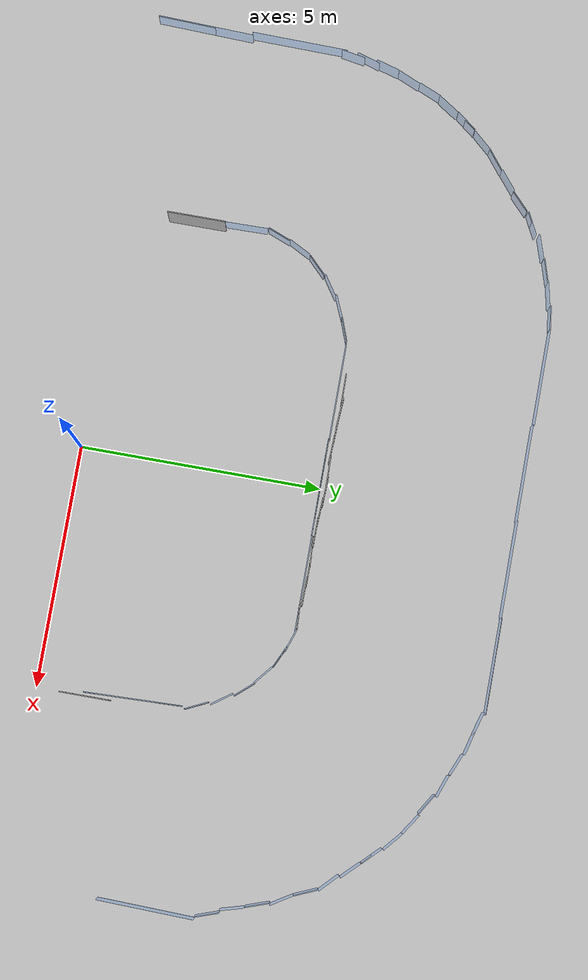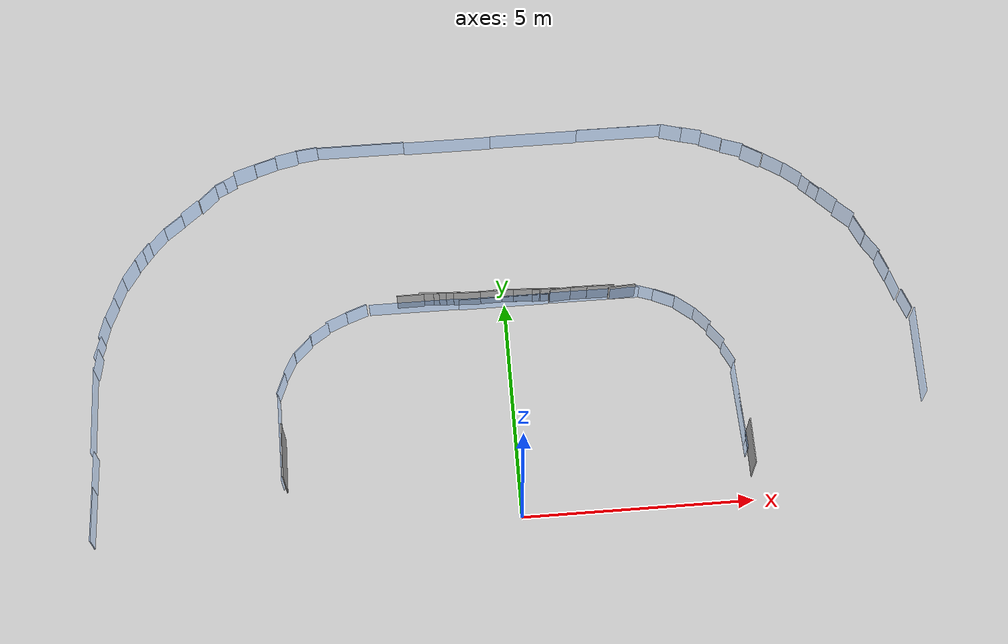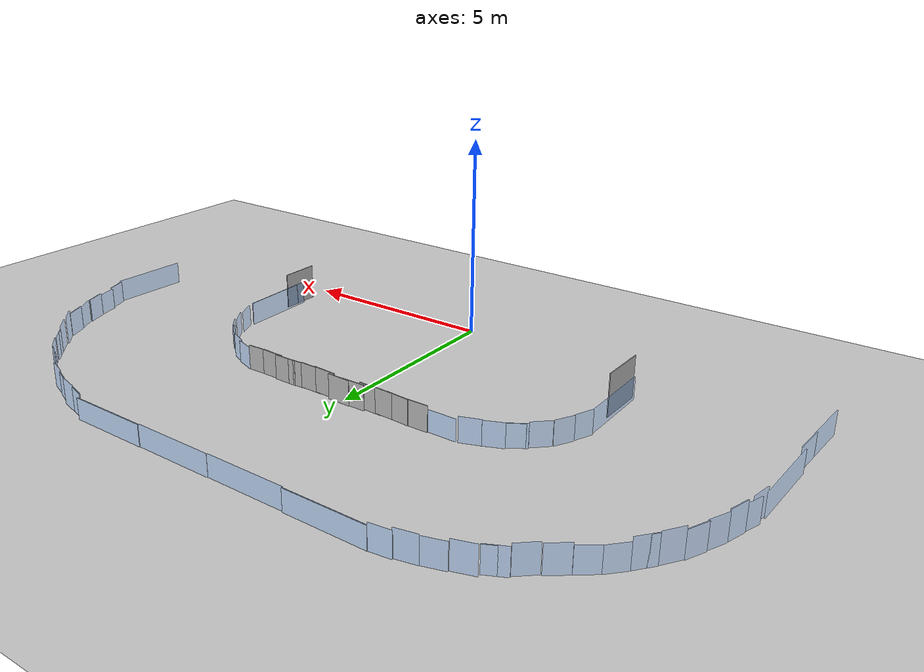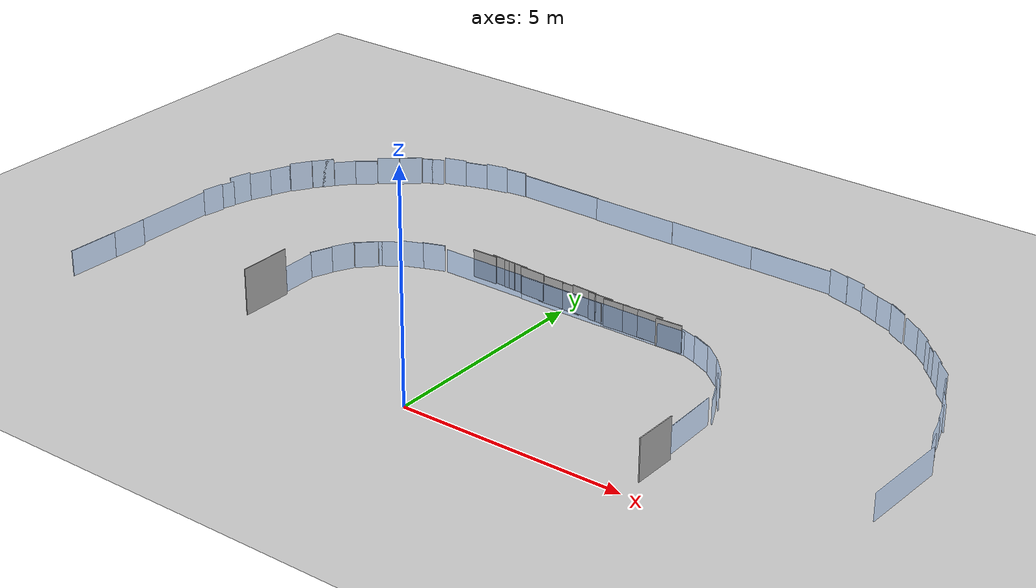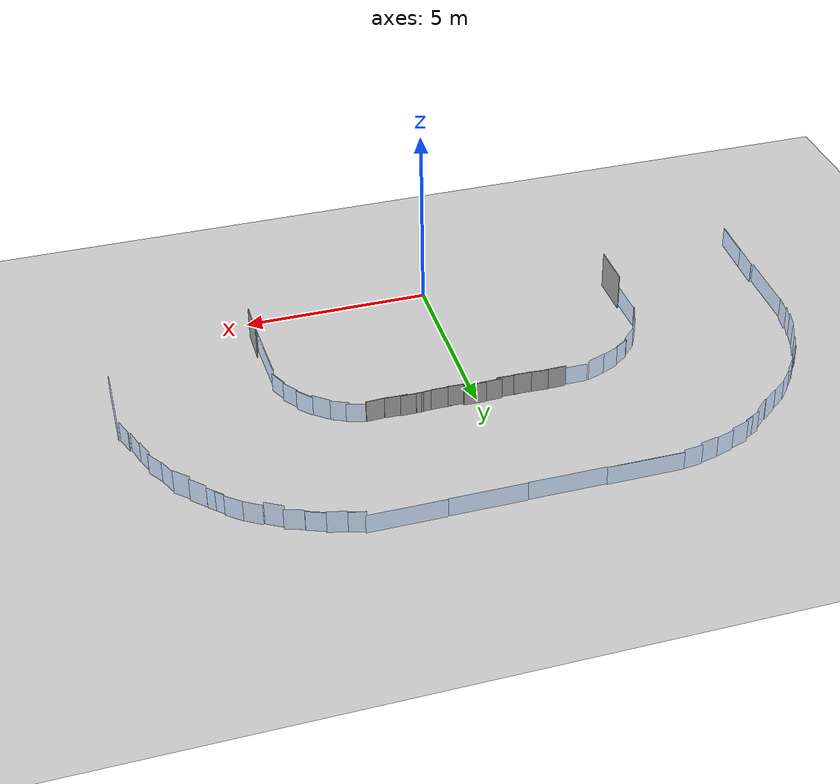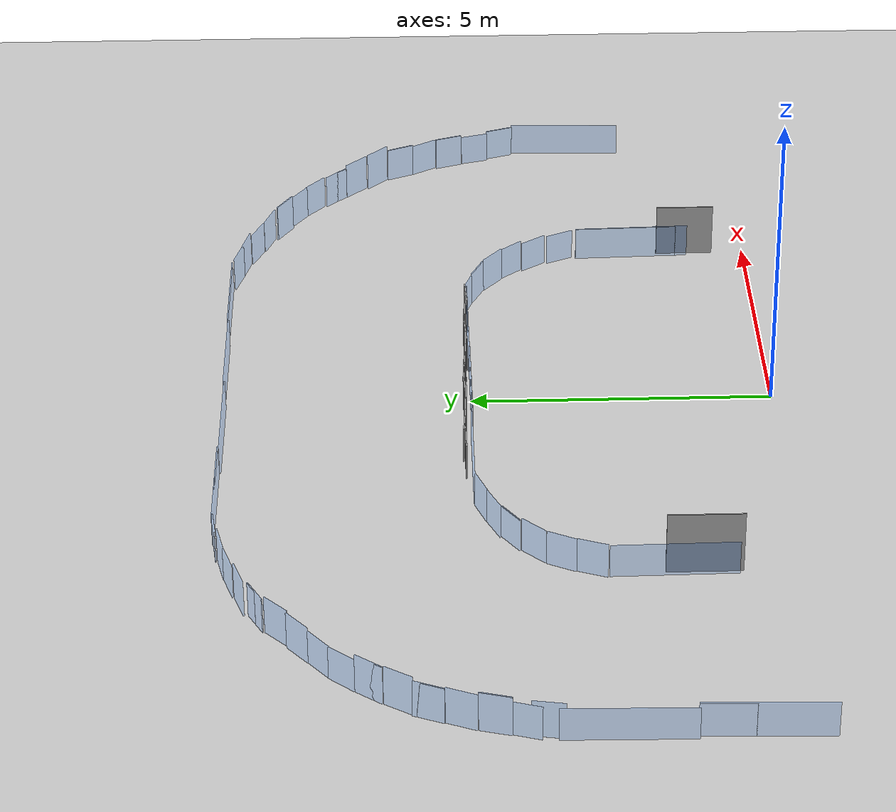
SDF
<sdf version="1.7">
 <world name="saft_city_arena">
  <model name="ground_plane">
   <static>1</static>
   <link name="link">
    <collision name="collision">
     <geometry><plane><normal>0 0 1</normal><size>100 100</size></plane></geometry>
     <surface>
      <contact><collide_bitmask>65535</collide_bitmask></contact>
      <friction><ode><mu>100</mu><mu2>50</mu2></ode></friction>
     </surface>
    </collision>
    <visual name="visual">
     <cast_shadows>0</cast_shadows>
     <geometry><plane><normal>0 0 1</normal><size>100 100</size></plane></geometry>
     <material>
      <script><uri>file://media/materials/scripts/gazebo.material</uri><name>Gazebo/Grey</name></script>
     </material>
    </visual>
   </link>
  </model>
  <model name="trash_sign_04">
   <static>1</static>
   <link name="sign">
    <visual name="visual">
     <pose>0 0 0.1 0 -0 0</pose>
     <geometry><box><size>0.02 1 1</size></box></geometry>
     <material>
      <script>
       <uri>model://photo_signs/trash_sign_04/materials/scripts</uri>
       <uri>model://photo_signs/trash_sign_04/materials/textures</uri>
       <name>PhotoSign/trash_sign_04</name>
      </script>
     </material>
    </visual>
   </link>
   <pose>5.01136 1.04539 0.304628 0 -0 0</pose>
  </model>
  <model name="building_sign_01">
   <static>1</static>
   <link name="sign">
    <visual name="visual">
     <pose>0 0 0.175 0 -0 0</pose>
     <geometry><box><size>0.02 1.2 1.2</size></box></geometry>
     <material>
      <script>
       <uri>model://photo_signs/building_sign_01/materials/scripts</uri>
       <uri>model://photo_signs/building_sign_01/materials/textures</uri>
       <name>PhotoSign/building_sign_01</name>
      </script>
     </material>
    </visual>
   </link>
   <pose>-4.98428 1.54626 0.247239 0 -0 0</pose>
  </model>
  <model name="person_sign_01">
   <static>1</static>
   <link name="sign">
    <visual name="visual">
     <pose>0 0 0.16 0 -0 0</pose>
     <geometry><box><size>0.02 0.6 0.62</size></box></geometry>
     <material>
      <script>
       <uri>model://photo_signs/person_sign_01/materials/scripts</uri>
       <uri>model://photo_signs/person_sign_01/materials/textures</uri>
       <name>PhotoSign/person_sign_01</name>
      </script>
     </material>
    </visual>
   </link>
   <pose>2.14956 5.05182 0.150774 0 0 -1.58447</pose>
  </model>
  <model name="person_sign_02">
   <static>1</static>
   <link name="sign">
    <visual name="visual">
     <pose>0 0 0.16 0 -0 0</pose>
     <geometry><box><size>0.02 0.6 0.62</size></box></geometry>
     <material>
      <script>
       <uri>model://photo_signs/person_sign_02/materials/scripts</uri>
       <uri>model://photo_signs/person_sign_02/materials/textures</uri>
       <name>PhotoSign/person_sign_02</name>
      </script>
     </material>
    </visual>
   </link>
   <pose>1.73394 5.06385 0.137015 0 0 -1.56904</pose>
  </model>
  <model name="person_sign_03">
   <static>1</static>
   <link name="sign">
    <visual name="visual">
     <pose>0 0 0.16 0 -0 0</pose>
     <geometry><box><size>0.02 0.6 0.62</size></box></geometry>
     <material>
      <script>
       <uri>model://photo_signs/person_sign_03/materials/scripts</uri>
       <uri>model://photo_signs/person_sign_03/materials/textures</uri>
       <name>PhotoSign/person_sign_03</name>
      </script>
     </material>
    </visual>
   </link>
   <pose>1.32292 5.05339 0.139864 0 0 -1.50844</pose>
  </model>
  <model name="person_sign_04">
   <static>1</static>
   <link name="sign">
    <visual name="visual">
     <pose>0 0 0.16 0 -0 0</pose>
     <geometry><box><size>0.02 0.6 0.62</size></box></geometry>
     <material>
      <script>
       <uri>model://photo_signs/person_sign_04/materials/scripts</uri>
       <uri>model://photo_signs/person_sign_04/materials/textures</uri>
       <name>PhotoSign/person_sign_04</name>
      </script>
     </material>
    </visual>
   </link>
   <pose>0.931752 5.06364 0.158173 0 0 -1.58189</pose>
  </model>
  <model name="person_sign_05">
   <static>1</static>
   <link name="sign">
    <visual name="visual">
     <pose>0 0 0.16 0 -0 0</pose>
     <geometry><box><size>0.02 0.6 0.62</size></box></geometry>
     <material>
      <script>
       <uri>model://photo_signs/person_sign_05/materials/scripts</uri>
       <uri>model://photo_signs/person_sign_05/materials/textures</uri>
       <name>PhotoSign/person_sign_05</name>
      </script>
     </material>
    </visual>
   </link>
   <pose>0.515768 5.07932 0.173126 0 0 -1.62224</pose>
  </model>
  <model name="person_sign_06">
   <static>1</static>
   <link name="sign">
    <visual name="visual">
     <pose>0 0 0.16 0 -0 0</pose>
     <geometry><box><size>0.02 0.6 0.62</size></box></geometry>
     <material>
      <script>
       <uri>model://photo_signs/person_sign_06/materials/scripts</uri>
       <uri>model://photo_signs/person_sign_06/materials/textures</uri>
       <name>PhotoSign/person_sign_06</name>
      </script>
     </material>
    </visual>
   </link>
   <pose>0.071031 5.11301 0.138445 0 0 -1.6041</pose>
  </model>
  <model name="person_sign_07">
   <static>1</static>
   <link name="sign">
    <visual name="visual">
     <pose>0 0 0.16 0 -0 0</pose>
     <geometry><box><size>0.02 0.6 0.62</size></box></geometry>
     <material>
      <script>
       <uri>model://photo_signs/person_sign_07/materials/scripts</uri>
       <uri>model://photo_signs/person_sign_07/materials/textures</uri>
       <name>PhotoSign/person_sign_07</name>
      </script>
     </material>
    </visual>
   </link>
   <pose>-0.349251 5.10924 0.145721 0 0 -1.55728</pose>
  </model>
  <model name="person_sign_08">
   <static>1</static>
   <link name="sign">
    <visual name="visual">
     <pose>0 0 0.16 0 -0 0</pose>
     <geometry><box><size>0.02 0.6 0.62</size></box></geometry>
     <material>
      <script>
       <uri>model://photo_signs/person_sign_08/materials/scripts</uri>
       <uri>model://photo_signs/person_sign_08/materials/textures</uri>
       <name>PhotoSign/person_sign_08</name>
      </script>
     </material>
    </visual>
   </link>
   <pose>-0.820761 5.0966 0.177459 0 0 -1.60914</pose>
  </model>
  <model name="person_sign_09">
   <static>1</static>
   <link name="sign">
    <visual name="visual">
     <pose>0 0 0.16 0 -0 0</pose>
     <geometry><box><size>0.02 0.6 0.62</size></box></geometry>
     <material>
      <script>
       <uri>model://photo_signs/person_sign_09/materials/scripts</uri>
       <uri>model://photo_signs/person_sign_09/materials/textures</uri>
       <name>PhotoSign/person_sign_09</name>
      </script>
     </material>
    </visual>
   </link>
   <pose>-1.26214 5.11592 0.19236 0 0 -1.6064</pose>
  </model>
  <model name="person_sign_10">
   <static>1</static>
   <link name="sign">
    <visual name="visual">
     <pose>0 0 0.16 0 -0 0</pose>
     <geometry><box><size>0.02 0.6 0.62</size></box></geometry>
     <material>
      <script>
       <uri>model://photo_signs/person_sign_10/materials/scripts</uri>
       <uri>model://photo_signs/person_sign_10/materials/textures</uri>
       <name>PhotoSign/person_sign_10</name>
      </script>
     </material>
    </visual>
   </link>
   <pose>-1.58387 5.13215 0.194342 0 0 -1.63895</pose>
  </model>
  <model name="person_sign_11">
   <static>1</static>
   <link name="sign">
    <visual name="visual">
     <pose>0 0 0.16 0 -0 0</pose>
     <geometry><box><size>0.02 0.6 0.62</size></box></geometry>
     <material>
      <script>
       <uri>model://photo_signs/person_sign_11/materials/scripts</uri>
       <uri>model://photo_signs/person_sign_11/materials/textures</uri>
       <name>PhotoSign/person_sign_11</name>
      </script>
     </material>
    </visual>
   </link>
   <pose>-2.07522 5.12272 0.182686 0 0 -1.56299</pose>
  </model>
  <model name="person_sign_12">
   <static>1</static>
   <link name="sign">
    <visual name="visual">
     <pose>0 0 0.16 0 -0 0</pose>
     <geometry><box><size>0.02 0.6 0.62</size></box></geometry>
     <material>
      <script>
       <uri>model://photo_signs/person_sign_12/materials/scripts</uri>
       <uri>model://photo_signs/person_sign_12/materials/textures</uri>
       <name>PhotoSign/person_sign_12</name>
      </script>
     </material>
    </visual>
   </link>
   <pose>2.62259 5.01801 0.129118 0 0 -1.52126</pose>
  </model>
  <model name="transparent_wall_7">
   <static>1</static>
   <link name="wall">
    <collision name="collision"><geometry><box><size>2 0.02 1</size></box></geometry></collision>
    <visual name="visual">
     <geometry><box><size>2 0.02 1</size></box></geometry>
     <material>
      <ambient>0.3 0.6 1 0.3</ambient>
      <diffuse>0.3 0.6 1 0.3</diffuse>
      <specular>0 0 0 0</specular>
      <emissive>0 0 0 0</emissive>
     </material>
    </visual>
   </link>
   <pose>-5.06249 2.00981 0.041984 0 -0 1.58519</pose>
  </model>
  <model name="transparent_wall_10">
   <static>1</static>
   <link name="wall">
    <collision name="collision"><geometry><box><size>2 0.02 1</size></box></geometry></collision>
    <visual name="visual">
     <geometry><box><size>2 0.02 1</size></box></geometry>
     <material>
      <ambient>0.3 0.6 1 0.3</ambient>
      <diffuse>0.3 0.6 1 0.3</diffuse>
      <specular>0 0 0 0</specular>
      <emissive>0 0 0 0</emissive>
     </material>
    </visual>
   </link>
   <pose>4.90263 2.00371 0.067201 0 -0 1.60296</pose>
  </model>
  <model name="transparent_wall_11">
   <static>1</static>
   <link name="wall">
    <collision name="collision"><geometry><box><size>2 0.02 1</size></box></geometry></collision>
    <visual name="visual">
     <geometry><box><size>2 0.02 1</size></box></geometry>
     <material>
      <ambient>0.3 0.6 1 0.3</ambient>
      <diffuse>0.3 0.6 1 0.3</diffuse>
      <specular>0 0 0 0</specular>
      <emissive>0 0 0 0</emissive>
     </material>
    </visual>
   </link>
   <pose>2.00706 5.00496 0 0 -0 0</pose>
  </model>
  <model name="transparent_wall_12">
   <static>1</static>
   <link name="wall">
    <collision name="collision"><geometry><box><size>2 0.02 1</size></box></geometry></collision>
    <visual name="visual">
     <geometry><box><size>2 0.02 1</size></box></geometry>
     <material>
      <ambient>0.3 0.6 1 0.3</ambient>
      <diffuse>0.3 0.6 1 0.3</diffuse>
      <specular>0 0 0 0</specular>
      <emissive>0 0 0 0</emissive>
     </material>
    </visual>
   </link>
   <pose>-0.012906 4.99693 0 0 -0 0</pose>
  </model>
  <model name="transparent_wall_13">
   <static>1</static>
   <link name="wall">
    <collision name="collision"><geometry><box><size>2 0.02 1</size></box></geometry></collision>
    <visual name="visual">
     <geometry><box><size>2 0.02 1</size></box></geometry>
     <material>
      <ambient>0.3 0.6 1 0.3</ambient>
      <diffuse>0.3 0.6 1 0.3</diffuse>
      <specular>0 0 0 0</specular>
      <emissive>0 0 0 0</emissive>
     </material>
    </visual>
   </link>
   <pose>-2.00866 5.01257 0 0 -0 0</pose>
  </model>
  <model name="transparent_wall_short_11">
   <static>1</static>
   <link name="wall">
    <collision name="collision"><geometry><box><size>0.5 0.02 1</size></box></geometry></collision>
    <visual name="visual">
     <geometry><box><size>0.5 0.02 1</size></box></geometry>
     <material>
      <ambient>0.3 0.6 1 0.3</ambient>
      <diffuse>0.3 0.6 1 0.3</diffuse>
      <specular>0 0 0 0</specular>
      <emissive>0 0 0 0</emissive>
     </material>
    </visual>
   </link>
   <pose>4.80907 3.2971 0.020246 0 0 -1.12421</pose>
  </model>
  <model name="transparent_wall_short_12">
   <static>1</static>
   <link name="wall">
    <collision name="collision"><geometry><box><size>0.5 0.02 1</size></box></geometry></collision>
    <visual name="visual">
     <geometry><box><size>0.5 0.02 1</size></box></geometry>
     <material>
      <ambient>0.3 0.6 1 0.3</ambient>
      <diffuse>0.3 0.6 1 0.3</diffuse>
      <specular>0 0 0 0</specular>
      <emissive>0 0 0 0</emissive>
     </material>
    </visual>
   </link>
   <pose>4.58747 3.77696 0.026694 0 0 -0.949792</pose>
  </model>
  <model name="transparent_wall_short_13">
   <static>1</static>
   <link name="wall">
    <collision name="collision"><geometry><box><size>0.5 0.02 1</size></box></geometry></collision>
    <visual name="visual">
     <geometry><box><size>0.5 0.02 1</size></box></geometry>
     <material>
      <ambient>0.3 0.6 1 0.3</ambient>
      <diffuse>0.3 0.6 1 0.3</diffuse>
      <specular>0 0 0 0</specular>
      <emissive>0 0 0 0</emissive>
     </material>
    </visual>
   </link>
   <pose>4.32065 4.19695 0.051881 0 0 -0.856989</pose>
  </model>
  <model name="transparent_wall_short_14">
   <static>1</static>
   <link name="wall">
    <collision name="collision"><geometry><box><size>0.5 0.02 1</size></box></geometry></collision>
    <visual name="visual">
     <geometry><box><size>0.5 0.02 1</size></box></geometry>
     <material>
      <ambient>0.3 0.6 1 0.3</ambient>
      <diffuse>0.3 0.6 1 0.3</diffuse>
      <specular>0 0 0 0</specular>
      <emissive>0 0 0 0</emissive>
     </material>
    </visual>
   </link>
   <pose>3.96315 4.51815 0.08493 0 0 -0.687549</pose>
  </model>
  <model name="transparent_wall_short_15">
   <static>1</static>
   <link name="wall">
    <collision name="collision"><geometry><box><size>0.5 0.02 1</size></box></geometry></collision>
    <visual name="visual">
     <geometry><box><size>0.5 0.02 1</size></box></geometry>
     <material>
      <ambient>0.3 0.6 1 0.3</ambient>
      <diffuse>0.3 0.6 1 0.3</diffuse>
      <specular>0 0 0 0</specular>
      <emissive>0 0 0 0</emissive>
     </material>
    </visual>
   </link>
   <pose>3.54274 4.79572 0.065202 0 0 -0.429976</pose>
  </model>
  <model name="transparent_wall_short_16">
   <static>1</static>
   <link name="wall">
    <collision name="collision"><geometry><box><size>0.5 0.02 1</size></box></geometry></collision>
    <visual name="visual">
     <geometry><box><size>0.5 0.02 1</size></box></geometry>
     <material>
      <ambient>0.3 0.6 1 0.3</ambient>
      <diffuse>0.3 0.6 1 0.3</diffuse>
      <specular>0 0 0 0</specular>
      <emissive>0 0 0 0</emissive>
     </material>
    </visual>
   </link>
   <pose>3.17105 4.95409 0.02787 0 0 -0.324928</pose>
  </model>
  <model name="transparent_wall_short_17">
   <static>1</static>
   <link name="wall">
    <collision name="collision"><geometry><box><size>0.5 0.02 1</size></box></geometry></collision>
    <visual name="visual">
     <geometry><box><size>0.5 0.02 1</size></box></geometry>
     <material>
      <ambient>0.3 0.6 1 0.3</ambient>
      <diffuse>0.3 0.6 1 0.3</diffuse>
      <specular>0 0 0 0</specular>
      <emissive>0 0 0 0</emissive>
     </material>
    </visual>
   </link>
   <pose>-3.29522 4.91907 0.079268 0 -0 0.353213</pose>
  </model>
  <model name="transparent_wall_short_18">
   <static>1</static>
   <link name="wall">
    <collision name="collision"><geometry><box><size>0.5 0.02 1</size></box></geometry></collision>
    <visual name="visual">
     <geometry><box><size>0.5 0.02 1</size></box></geometry>
     <material>
      <ambient>0.3 0.6 1 0.3</ambient>
      <diffuse>0.3 0.6 1 0.3</diffuse>
      <specular>0 0 0 0</specular>
      <emissive>0 0 0 0</emissive>
     </material>
    </visual>
   </link>
   <pose>-3.74482 4.73577 0.064179 0 -0 0.407671</pose>
  </model>
  <model name="transparent_wall_short_19">
   <static>1</static>
   <link name="wall">
    <collision name="collision"><geometry><box><size>0.5 0.02 1</size></box></geometry></collision>
    <visual name="visual">
     <geometry><box><size>0.5 0.02 1</size></box></geometry>
     <material>
      <ambient>0.3 0.6 1 0.3</ambient>
      <diffuse>0.3 0.6 1 0.3</diffuse>
      <specular>0 0 0 0</specular>
      <emissive>0 0 0 0</emissive>
     </material>
    </visual>
   </link>
   <pose>-4.13752 4.4844 0.046875 0 -0 0.590745</pose>
  </model>
  <model name="transparent_wall_short_20">
   <static>1</static>
   <link name="wall">
    <collision name="collision"><geometry><box><size>0.5 0.02 1</size></box></geometry></collision>
    <visual name="visual">
     <geometry><box><size>0.5 0.02 1</size></box></geometry>
     <material>
      <ambient>0.3 0.6 1 0.3</ambient>
      <diffuse>0.3 0.6 1 0.3</diffuse>
      <specular>0 0 0 0</specular>
      <emissive>0 0 0 0</emissive>
     </material>
    </visual>
   </link>
   <pose>-4.50886 4.13866 0.064163 0 -0 0.783613</pose>
  </model>
  <model name="transparent_wall_short_21">
   <static>1</static>
   <link name="wall">
    <collision name="collision"><geometry><box><size>0.5 0.02 1</size></box></geometry></collision>
    <visual name="visual">
     <geometry><box><size>0.5 0.02 1</size></box></geometry>
     <material>
      <ambient>0.3 0.6 1 0.3</ambient>
      <diffuse>0.3 0.6 1 0.3</diffuse>
      <specular>0 0 0 0</specular>
      <emissive>0 0 0 0</emissive>
     </material>
    </visual>
   </link>
   <pose>-4.8132 3.72803 0.071165 0 -0 1.09326</pose>
  </model>
  <model name="transparent_wall_short_22">
   <static>1</static>
   <link name="wall">
    <collision name="collision"><geometry><box><size>0.5 0.02 1</size></box></geometry></collision>
    <visual name="visual">
     <geometry><box><size>0.5 0.02 1</size></box></geometry>
     <material>
      <ambient>0.3 0.6 1 0.3</ambient>
      <diffuse>0.3 0.6 1 0.3</diffuse>
      <specular>0 0 0 0</specular>
      <emissive>0 0 0 0</emissive>
     </material>
    </visual>
   </link>
   <pose>-5.00622 3.26337 0.071421 0 -0 1.20118</pose>
  </model>
  <model name="transparent_wall_16">
   <static>1</static>
   <link name="wall">
    <collision name="collision"><geometry><box><size>2 0.02 1</size></box></geometry></collision>
    <visual name="visual">
     <geometry><box><size>2 0.02 1</size></box></geometry>
     <material>
      <ambient>0.3 0.6 1 0.3</ambient>
      <diffuse>0.3 0.6 1 0.3</diffuse>
      <specular>0 0 0 0</specular>
      <emissive>0 0 0 0</emissive>
     </material>
    </visual>
   </link>
   <pose>-9.07089 0.997301 0.061654 0 0 -1.60555</pose>
  </model>
  <model name="transparent_wall_17">
   <static>1</static>
   <link name="wall">
    <collision name="collision"><geometry><box><size>2 0.02 1</size></box></geometry></collision>
    <visual name="visual">
     <geometry><box><size>2 0.02 1</size></box></geometry>
     <material>
      <ambient>0.3 0.6 1 0.3</ambient>
      <diffuse>0.3 0.6 1 0.3</diffuse>
      <specular>0 0 0 0</specular>
      <emissive>0 0 0 0</emissive>
     </material>
    </visual>
   </link>
   <pose>-9.08816 2.97502 0.023913 0 0 -1.58889</pose>
  </model>
  <model name="transparent_wall_18">
   <static>1</static>
   <link name="wall">
    <collision name="collision"><geometry><box><size>2 0.02 1</size></box></geometry></collision>
    <visual name="visual">
     <geometry><box><size>2 0.02 1</size></box></geometry>
     <material>
      <ambient>0.3 0.6 1 0.3</ambient>
      <diffuse>0.3 0.6 1 0.3</diffuse>
      <specular>0 0 0 0</specular>
      <emissive>0 0 0 0</emissive>
     </material>
    </visual>
   </link>
   <pose>-3.02083 9.08937 0 0 -0 0</pose>
  </model>
  <model name="transparent_wall_19">
   <static>1</static>
   <link name="wall">
    <collision name="collision"><geometry><box><size>2 0.02 1</size></box></geometry></collision>
    <visual name="visual">
     <geometry><box><size>2 0.02 1</size></box></geometry>
     <material>
      <ambient>0.3 0.6 1 0.3</ambient>
      <diffuse>0.3 0.6 1 0.3</diffuse>
      <specular>0 0 0 0</specular>
      <emissive>0 0 0 0</emissive>
     </material>
    </visual>
   </link>
   <pose>-1.02556 9.06492 0 0 -0 0</pose>
  </model>
  <model name="transparent_wall_20">
   <static>1</static>
   <link name="wall">
    <collision name="collision"><geometry><box><size>2 0.02 1</size></box></geometry></collision>
    <visual name="visual">
     <geometry><box><size>2 0.02 1</size></box></geometry>
     <material>
      <ambient>0.3 0.6 1 0.3</ambient>
      <diffuse>0.3 0.6 1 0.3</diffuse>
      <specular>0 0 0 0</specular>
      <emissive>0 0 0 0</emissive>
     </material>
    </visual>
   </link>
   <pose>0.982394 9.07937 0 0 -0 0</pose>
  </model>
  <model name="transparent_wall_21">
   <static>1</static>
   <link name="wall">
    <collision name="collision"><geometry><box><size>2 0.02 1</size></box></geometry></collision>
    <visual name="visual">
     <geometry><box><size>2 0.02 1</size></box></geometry>
     <material>
      <ambient>0.3 0.6 1 0.3</ambient>
      <diffuse>0.3 0.6 1 0.3</diffuse>
      <specular>0 0 0 0</specular>
      <emissive>0 0 0 0</emissive>
     </material>
    </visual>
   </link>
   <pose>2.97679 9.09387 0 0 -0 0</pose>
  </model>
  <model name="transparent_wall_22">
   <static>1</static>
   <link name="wall">
    <collision name="collision"><geometry><box><size>2 0.02 1</size></box></geometry></collision>
    <visual name="visual">
     <geometry><box><size>2 0.02 1</size></box></geometry>
     <material>
      <ambient>0.3 0.6 1 0.3</ambient>
      <diffuse>0.3 0.6 1 0.3</diffuse>
      <specular>0 0 0 0</specular>
      <emissive>0 0 0 0</emissive>
     </material>
    </visual>
   </link>
   <pose>8.99488 3.00669 0.061624 0 -0 1.54291</pose>
  </model>
  <model name="transparent_wall_short_40">
   <static>1</static>
   <link name="wall">
    <collision name="collision"><geometry><box><size>0.5 0.02 1</size></box></geometry></collision>
    <visual name="visual">
     <geometry><box><size>0.5 0.02 1</size></box></geometry>
     <material>
      <ambient>0.3 0.6 1 0.3</ambient>
      <diffuse>0.3 0.6 1 0.3</diffuse>
      <specular>0 0 0 0</specular>
      <emissive>0 0 0 0</emissive>
     </material>
    </visual>
   </link>
   <pose>8.88728 4.24642 0.053287 0 0 -1.23484</pose>
  </model>
  <model name="transparent_wall_short_41">
   <static>1</static>
   <link name="wall">
    <collision name="collision"><geometry><box><size>0.5 0.02 1</size></box></geometry></collision>
    <visual name="visual">
     <geometry><box><size>0.5 0.02 1</size></box></geometry>
     <material>
      <ambient>0.3 0.6 1 0.3</ambient>
      <diffuse>0.3 0.6 1 0.3</diffuse>
      <specular>0 0 0 0</specular>
      <emissive>0 0 0 0</emissive>
     </material>
    </visual>
   </link>
   <pose>8.6867 4.71955 0.028508 0 -0 1.84609</pose>
  </model>
  <model name="transparent_wall_short_42">
   <static>1</static>
   <link name="wall">
    <collision name="collision"><geometry><box><size>0.5 0.02 1</size></box></geometry></collision>
    <visual name="visual">
     <geometry><box><size>0.5 0.02 1</size></box></geometry>
     <material>
      <ambient>0.3 0.6 1 0.3</ambient>
      <diffuse>0.3 0.6 1 0.3</diffuse>
      <specular>0 0 0 0</specular>
      <emissive>0 0 0 0</emissive>
     </material>
    </visual>
   </link>
   <pose>8.51861 5.21171 0.081241 0 0 -1.23328</pose>
  </model>
  <model name="transparent_wall_short_43">
   <static>1</static>
   <link name="wall">
    <collision name="collision"><geometry><box><size>0.5 0.02 1</size></box></geometry></collision>
    <visual name="visual">
     <geometry><box><size>0.5 0.02 1</size></box></geometry>
     <material>
      <ambient>0.3 0.6 1 0.3</ambient>
      <diffuse>0.3 0.6 1 0.3</diffuse>
      <specular>0 0 0 0</specular>
      <emissive>0 0 0 0</emissive>
     </material>
    </visual>
   </link>
   <pose>8.34237 5.67323 0.06011 0 0 -1.01445</pose>
  </model>
  <model name="transparent_wall_short_44">
   <static>1</static>
   <link name="wall">
    <collision name="collision"><geometry><box><size>0.5 0.02 1</size></box></geometry></collision>
    <visual name="visual">
     <geometry><box><size>0.5 0.02 1</size></box></geometry>
     <material>
      <ambient>0.3 0.6 1 0.3</ambient>
      <diffuse>0.3 0.6 1 0.3</diffuse>
      <specular>0 0 0 0</specular>
      <emissive>0 0 0 0</emissive>
     </material>
    </visual>
   </link>
   <pose>8.10772 6.12248 0.093139 0 0 -1.15587</pose>
  </model>
  <model name="transparent_wall_short_45">
   <static>1</static>
   <link name="wall">
    <collision name="collision"><geometry><box><size>0.5 0.02 1</size></box></geometry></collision>
    <visual name="visual">
     <geometry><box><size>0.5 0.02 1</size></box></geometry>
     <material>
      <ambient>0.3 0.6 1 0.3</ambient>
      <diffuse>0.3 0.6 1 0.3</diffuse>
      <specular>0 0 0 0</specular>
      <emissive>0 0 0 0</emissive>
     </material>
    </visual>
   </link>
   <pose>7.83925 6.54872 0.169138 0 0 -0.771215</pose>
  </model>
  <model name="transparent_wall_short_46">
   <static>1</static>
   <link name="wall">
    <collision name="collision"><geometry><box><size>0.5 0.02 1</size></box></geometry></collision>
    <visual name="visual">
     <geometry><box><size>0.5 0.02 1</size></box></geometry>
     <material>
      <ambient>0.3 0.6 1 0.3</ambient>
      <diffuse>0.3 0.6 1 0.3</diffuse>
      <specular>0 0 0 0</specular>
      <emissive>0 0 0 0</emissive>
     </material>
    </visual>
   </link>
   <pose>4.16968 8.98319 0.087132 0 0 -0.277922</pose>
  </model>
  <model name="transparent_wall_short_47">
   <static>1</static>
   <link name="wall">
    <collision name="collision"><geometry><box><size>0.5 0.02 1</size></box></geometry></collision>
    <visual name="visual">
     <geometry><box><size>0.5 0.02 1</size></box></geometry>
     <material>
      <ambient>0.3 0.6 1 0.3</ambient>
      <diffuse>0.3 0.6 1 0.3</diffuse>
      <specular>0 0 0 0</specular>
      <emissive>0 0 0 0</emissive>
     </material>
    </visual>
   </link>
   <pose>7.51767 6.9363 0.133122 0 0 -0.795759</pose>
  </model>
  <model name="transparent_wall_short_48">
   <static>1</static>
   <link name="wall">
    <collision name="collision"><geometry><box><size>0.5 0.02 1</size></box></geometry></collision>
    <visual name="visual">
     <geometry><box><size>0.5 0.02 1</size></box></geometry>
     <material>
      <ambient>0.3 0.6 1 0.3</ambient>
      <diffuse>0.3 0.6 1 0.3</diffuse>
      <specular>0 0 0 0</specular>
      <emissive>0 0 0 0</emissive>
     </material>
    </visual>
   </link>
   <pose>7.16246 7.30624 0.072908 0 0 -0.784456</pose>
  </model>
  <model name="transparent_wall_short_49">
   <static>1</static>
   <link name="wall">
    <collision name="collision"><geometry><box><size>0.5 0.02 1</size></box></geometry></collision>
    <visual name="visual">
     <geometry><box><size>0.5 0.02 1</size></box></geometry>
     <material>
      <ambient>0.3 0.6 1 0.3</ambient>
      <diffuse>0.3 0.6 1 0.3</diffuse>
      <specular>0 0 0 0</specular>
      <emissive>0 0 0 0</emissive>
     </material>
    </visual>
   </link>
   <pose>6.80599 7.68511 0.069898 0 0 -0.705112</pose>
  </model>
  <model name="transparent_wall_short_50">
   <static>1</static>
   <link name="wall">
    <collision name="collision"><geometry><box><size>0.5 0.02 1</size></box></geometry></collision>
    <visual name="visual">
     <geometry><box><size>0.5 0.02 1</size></box></geometry>
     <material>
      <ambient>0.3 0.6 1 0.3</ambient>
      <diffuse>0.3 0.6 1 0.3</diffuse>
      <specular>0 0 0 0</specular>
      <emissive>0 0 0 0</emissive>
     </material>
    </visual>
   </link>
   <pose>6.4072 7.97776 0.063917 0 0 -0.58438</pose>
  </model>
  <model name="transparent_wall_short_51">
   <static>1</static>
   <link name="wall">
    <collision name="collision"><geometry><box><size>0.5 0.02 1</size></box></geometry></collision>
    <visual name="visual">
     <geometry><box><size>0.5 0.02 1</size></box></geometry>
     <material>
      <ambient>0.3 0.6 1 0.3</ambient>
      <diffuse>0.3 0.6 1 0.3</diffuse>
      <specular>0 0 0 0</specular>
      <emissive>0 0 0 0</emissive>
     </material>
    </visual>
   </link>
   <pose>5.94899 8.22274 0.135529 0 0 -0.545688</pose>
  </model>
  <model name="transparent_wall_short_52">
   <static>1</static>
   <link name="wall">
    <collision name="collision"><geometry><box><size>0.5 0.02 1</size></box></geometry></collision>
    <visual name="visual">
     <geometry><box><size>0.5 0.02 1</size></box></geometry>
     <material>
      <ambient>0.3 0.6 1 0.3</ambient>
      <diffuse>0.3 0.6 1 0.3</diffuse>
      <specular>0 0 0 0</specular>
      <emissive>0 0 0 0</emissive>
     </material>
    </visual>
   </link>
   <pose>5.53732 8.48309 0.069848 0 0 -0.341585</pose>
  </model>
  <model name="transparent_wall_short_53">
   <static>1</static>
   <link name="wall">
    <collision name="collision"><geometry><box><size>0.5 0.02 1</size></box></geometry></collision>
    <visual name="visual">
     <geometry><box><size>0.5 0.02 1</size></box></geometry>
     <material>
      <ambient>0.3 0.6 1 0.3</ambient>
      <diffuse>0.3 0.6 1 0.3</diffuse>
      <specular>0 0 0 0</specular>
      <emissive>0 0 0 0</emissive>
     </material>
    </visual>
   </link>
   <pose>5.06543 8.68305 0.054991 0 0 -0.392538</pose>
  </model>
  <model name="transparent_wall_short_54">
   <static>1</static>
   <link name="wall">
    <collision name="collision"><geometry><box><size>0.5 0.02 1</size></box></geometry></collision>
    <visual name="visual">
     <geometry><box><size>0.5 0.02 1</size></box></geometry>
     <material>
      <ambient>0.3 0.6 1 0.3</ambient>
      <diffuse>0.3 0.6 1 0.3</diffuse>
      <specular>0 0 0 0</specular>
      <emissive>0 0 0 0</emissive>
     </material>
    </visual>
   </link>
   <pose>4.60034 8.86837 0.102191 0 0 -0.248214</pose>
  </model>
  <model name="transparent_wall_short_55">
   <static>1</static>
   <link name="wall">
    <collision name="collision"><geometry><box><size>0.5 0.02 1</size></box></geometry></collision>
    <visual name="visual">
     <geometry><box><size>0.5 0.02 1</size></box></geometry>
     <material>
      <ambient>0.3 0.6 1 0.3</ambient>
      <diffuse>0.3 0.6 1 0.3</diffuse>
      <specular>0 0 0 0</specular>
      <emissive>0 0 0 0</emissive>
     </material>
    </visual>
   </link>
   <pose>-4.26617 9.04991 0.051912 0 -0 0.122493</pose>
  </model>
  <model name="transparent_wall_short_56">
   <static>1</static>
   <link name="wall">
    <collision name="collision"><geometry><box><size>0.5 0.02 1</size></box></geometry></collision>
    <visual name="visual">
     <geometry><box><size>0.5 0.02 1</size></box></geometry>
     <material>
      <ambient>0.3 0.6 1 0.3</ambient>
      <diffuse>0.3 0.6 1 0.3</diffuse>
      <specular>0 0 0 0</specular>
      <emissive>0 0 0 0</emissive>
     </material>
    </visual>
   </link>
   <pose>-4.72907 8.9363 0.090378 0 -0 0.213294</pose>
  </model>
  <model name="transparent_wall_short_57">
   <static>1</static>
   <link name="wall">
    <collision name="collision"><geometry><box><size>0.5 0.02 1</size></box></geometry></collision>
    <visual name="visual">
     <geometry><box><size>0.5 0.02 1</size></box></geometry>
     <material>
      <ambient>0.3 0.6 1 0.3</ambient>
      <diffuse>0.3 0.6 1 0.3</diffuse>
      <specular>0 0 0 0</specular>
      <emissive>0 0 0 0</emissive>
     </material>
    </visual>
   </link>
   <pose>-6.13646 8.35492 0.078406 0 -0 0.474063</pose>
  </model>
  <model name="transparent_wall_short_58">
   <static>1</static>
   <link name="wall">
    <collision name="collision"><geometry><box><size>0.5 0.02 1</size></box></geometry></collision>
    <visual name="visual">
     <geometry><box><size>0.5 0.02 1</size></box></geometry>
     <material>
      <ambient>0.3 0.6 1 0.3</ambient>
      <diffuse>0.3 0.6 1 0.3</diffuse>
      <specular>0 0 0 0</specular>
      <emissive>0 0 0 0</emissive>
     </material>
    </visual>
   </link>
   <pose>-5.6904 8.6185 0.106429 0 -0 0.318603</pose>
  </model>
  <model name="transparent_wall_short_59">
   <static>1</static>
   <link name="wall">
    <collision name="collision"><geometry><box><size>0.5 0.02 1</size></box></geometry></collision>
    <visual name="visual">
     <geometry><box><size>0.5 0.02 1</size></box></geometry>
     <material>
      <ambient>0.3 0.6 1 0.3</ambient>
      <diffuse>0.3 0.6 1 0.3</diffuse>
      <specular>0 0 0 0</specular>
      <emissive>0 0 0 0</emissive>
     </material>
    </visual>
   </link>
   <pose>-5.21425 8.80043 0.06284 0 -0 0.301207</pose>
  </model>
  <model name="transparent_wall_short_60">
   <static>1</static>
   <link name="wall">
    <collision name="collision"><geometry><box><size>0.5 0.02 1</size></box></geometry></collision>
    <visual name="visual">
     <geometry><box><size>0.5 0.02 1</size></box></geometry>
     <material>
      <ambient>0.3 0.6 1 0.3</ambient>
      <diffuse>0.3 0.6 1 0.3</diffuse>
      <specular>0 0 0 0</specular>
      <emissive>0 0 0 0</emissive>
     </material>
    </visual>
   </link>
   <pose>-6.53103 8.03614 0.119148 0 -0 0.756399</pose>
  </model>
  <model name="transparent_wall_short_61">
   <static>1</static>
   <link name="wall">
    <collision name="collision"><geometry><box><size>0.5 0.02 1</size></box></geometry></collision>
    <visual name="visual">
     <geometry><box><size>0.5 0.02 1</size></box></geometry>
     <material>
      <ambient>0.3 0.6 1 0.3</ambient>
      <diffuse>0.3 0.6 1 0.3</diffuse>
      <specular>0 0 0 0</specular>
      <emissive>0 0 0 0</emissive>
     </material>
    </visual>
   </link>
   <pose>-6.93516 7.71716 0.105763 0 -0 0.683287</pose>
  </model>
  <model name="transparent_wall_short_62">
   <static>1</static>
   <link name="wall">
    <collision name="collision"><geometry><box><size>0.5 0.02 1</size></box></geometry></collision>
    <visual name="visual">
     <geometry><box><size>0.5 0.02 1</size></box></geometry>
     <material>
      <ambient>0.3 0.6 1 0.3</ambient>
      <diffuse>0.3 0.6 1 0.3</diffuse>
      <specular>0 0 0 0</specular>
      <emissive>0 0 0 0</emissive>
     </material>
    </visual>
   </link>
   <pose>-7.32445 7.39506 0.049554 0 -0 0.670042</pose>
  </model>
  <model name="transparent_wall_short_63">
   <static>1</static>
   <link name="wall">
    <collision name="collision"><geometry><box><size>0.5 0.02 1</size></box></geometry></collision>
    <visual name="visual">
     <geometry><box><size>0.5 0.02 1</size></box></geometry>
     <material>
      <ambient>0.3 0.6 1 0.3</ambient>
      <diffuse>0.3 0.6 1 0.3</diffuse>
      <specular>0 0 0 0</specular>
      <emissive>0 0 0 0</emissive>
     </material>
    </visual>
   </link>
   <pose>-7.67833 7.06209 0.045171 0 -0 0.846107</pose>
  </model>
  <model name="transparent_wall_short_64">
   <static>1</static>
   <link name="wall">
    <collision name="collision"><geometry><box><size>0.5 0.02 1</size></box></geometry></collision>
    <visual name="visual">
     <geometry><box><size>0.5 0.02 1</size></box></geometry>
     <material>
      <ambient>0.3 0.6 1 0.3</ambient>
      <diffuse>0.3 0.6 1 0.3</diffuse>
      <specular>0 0 0 0</specular>
      <emissive>0 0 0 0</emissive>
     </material>
    </visual>
   </link>
   <pose>-7.99997 6.66594 0.138534 0 -0 0.910116</pose>
  </model>
  <model name="transparent_wall_short_65">
   <static>1</static>
   <link name="wall">
    <collision name="collision"><geometry><box><size>0.5 0.02 1</size></box></geometry></collision>
    <visual name="visual">
     <geometry><box><size>0.5 0.02 1</size></box></geometry>
     <material>
      <ambient>0.3 0.6 1 0.3</ambient>
      <diffuse>0.3 0.6 1 0.3</diffuse>
      <specular>0 0 0 0</specular>
      <emissive>0 0 0 0</emissive>
     </material>
    </visual>
   </link>
   <pose>-8.28805 6.24134 0.147762 0 -0 0.991627</pose>
  </model>
  <model name="transparent_wall_short_66">
   <static>1</static>
   <link name="wall">
    <collision name="collision"><geometry><box><size>0.5 0.02 1</size></box></geometry></collision>
    <visual name="visual">
     <geometry><box><size>0.5 0.02 1</size></box></geometry>
     <material>
      <ambient>0.3 0.6 1 0.3</ambient>
      <diffuse>0.3 0.6 1 0.3</diffuse>
      <specular>0 0 0 0</specular>
      <emissive>0 0 0 0</emissive>
     </material>
    </visual>
   </link>
   <pose>-8.537 5.81032 0.096379 0 -0 1.17017</pose>
  </model>
  <model name="transparent_wall_short_67">
   <static>1</static>
   <link name="wall">
    <collision name="collision"><geometry><box><size>0.5 0.02 1</size></box></geometry></collision>
    <visual name="visual">
     <geometry><box><size>0.5 0.02 1</size></box></geometry>
     <material>
      <ambient>0.3 0.6 1 0.3</ambient>
      <diffuse>0.3 0.6 1 0.3</diffuse>
      <specular>0 0 0 0</specular>
      <emissive>0 0 0 0</emissive>
     </material>
    </visual>
   </link>
   <pose>-8.71697 5.34215 0.102127 0 -0 1.16696</pose>
  </model>
  <model name="transparent_wall_short_68">
   <static>1</static>
   <link name="wall">
    <collision name="collision"><geometry><box><size>0.5 0.02 1</size></box></geometry></collision>
    <visual name="visual">
     <geometry><box><size>0.5 0.02 1</size></box></geometry>
     <material>
      <ambient>0.3 0.6 1 0.3</ambient>
      <diffuse>0.3 0.6 1 0.3</diffuse>
      <specular>0 0 0 0</specular>
      <emissive>0 0 0 0</emissive>
     </material>
    </visual>
   </link>
   <pose>-8.87671 4.8642 0.153092 0 -0 1.29623</pose>
  </model>
  <model name="transparent_wall_short_69">
   <static>1</static>
   <link name="wall">
    <collision name="collision"><geometry><box><size>0.5 0.02 1</size></box></geometry></collision>
    <visual name="visual">
     <geometry><box><size>0.5 0.02 1</size></box></geometry>
     <material>
      <ambient>0.3 0.6 1 0.3</ambient>
      <diffuse>0.3 0.6 1 0.3</diffuse>
      <specular>0 0 0 0</specular>
      <emissive>0 0 0 0</emissive>
     </material>
    </visual>
   </link>
   <pose>-8.98158 4.44363 0.051931 0 -0 1.26046</pose>
  </model>
  <model name="transparent_wall_short_70">
   <static>1</static>
   <link name="wall">
    <collision name="collision"><geometry><box><size>0.5 0.02 1</size></box></geometry></collision>
    <visual name="visual">
     <geometry><box><size>0.5 0.02 1</size></box></geometry>
     <material>
      <ambient>0.3 0.6 1 0.3</ambient>
      <diffuse>0.3 0.6 1 0.3</diffuse>
      <specular>0 0 0 0</specular>
      <emissive>0 0 0 0</emissive>
     </material>
    </visual>
   </link>
   <pose>-8.99916 4.11919 0.093214 0 -0 1.39893</pose>
  </model>
  <include>
   <uri>model://transparent_wall</uri>
   <name>transparent_wall_10</name>
   <pose>4.9026 2.0037 0.0672 0.0000 0.0000 1.6030</pose>
   <static>true</static>
  </include>
  <include>
   <uri>model://transparent_wall</uri>
   <name>transparent_wall_12</name>
   <pose>-0.0129 4.9969 0.0000 0.0000 0.0000 0.0000</pose>
   <static>true</static>
  </include>
  <include>
   <uri>model://transparent_wall</uri>
   <name>transparent_wall_16</name>
   <pose>-9.0709 0.9973 0.0617 0.0000 0.0000 -1.6056</pose>
   <static>true</static>
  </include>
  <include>
   <uri>model://transparent_wall</uri>
   <name>transparent_wall_18</name>
   <pose>-3.0208 9.0894 0.0000 0.0000 0.0000 0.0000</pose>
   <static>true</static>
  </include>
  <include>
   <uri>model://transparent_wall</uri>
   <name>transparent_wall_21</name>
   <pose>2.9768 9.0939 0.0000 0.0000 0.0000 0.0000</pose>
   <static>true</static>
  </include>
  <include>
   <uri>model://transparent_wall_short</uri>
   <name>transparent_wall_short_11</name>
   <pose>4.8091 3.2971 0.0202 0.0000 0.0000 -1.1242</pose>
   <static>true</static>
  </include>
  <include>
   <uri>model://transparent_wall_short</uri>
   <name>transparent_wall_short_13</name>
   <pose>4.3206 4.1969 0.0519 0.0000 0.0000 -0.8570</pose>
   <static>true</static>
  </include>
  <include>
   <uri>model://transparent_wall_short</uri>
   <name>transparent_wall_short_15</name>
   <pose>3.5427 4.7957 0.0652 0.0000 0.0000 -0.4300</pose>
   <static>true</static>
  </include>
  <include>
   <uri>model://transparent_wall_short</uri>
   <name>transparent_wall_short_17</name>
   <pose>-3.2952 4.9191 0.0793 0.0000 0.0000 0.3532</pose>
   <static>true</static>
  </include>
  <include>
   <uri>model://transparent_wall_short</uri>
   <name>transparent_wall_short_19</name>
   <pose>-4.1375 4.4844 0.0469 0.0000 0.0000 0.5907</pose>
   <static>true</static>
  </include>
  <include>
   <uri>model://transparent_wall_short</uri>
   <name>transparent_wall_short_20</name>
   <pose>-4.5089 4.1387 0.0642 0.0000 0.0000 0.7836</pose>
   <static>true</static>
  </include>
  <include>
   <uri>model://transparent_wall_short</uri>
   <name>transparent_wall_short_22</name>
   <pose>-5.0062 3.2634 0.0714 0.0000 0.0000 1.2012</pose>
   <static>true</static>
  </include>
  <include>
   <uri>model://transparent_wall_short</uri>
   <name>transparent_wall_short_40</name>
   <pose>8.8873 4.2464 0.0533 0.0000 0.0000 -1.2348</pose>
   <static>true</static>
  </include>
  <include>
   <uri>model://transparent_wall_short</uri>
   <name>transparent_wall_short_42</name>
   <pose>8.5186 5.2117 0.0812 0.0000 0.0000 -1.2333</pose>
   <static>true</static>
  </include>
  <include>
   <uri>model://transparent_wall_short</uri>
   <name>transparent_wall_short_44</name>
   <pose>8.1077 6.1225 0.0931 0.0000 0.0000 -1.1559</pose>
   <static>true</static>
  </include>
  <include>
   <uri>model://transparent_wall_short</uri>
   <name>transparent_wall_short_46</name>
   <pose>4.1697 8.9832 0.0871 0.0000 0.0000 -0.2779</pose>
   <static>true</static>
  </include>
  <include>
   <uri>model://transparent_wall_short</uri>
   <name>transparent_wall_short_48</name>
   <pose>7.1625 7.3062 0.0729 0.0000 0.0000 -0.7845</pose>
   <static>true</static>
  </include>
  <include>
   <uri>model://transparent_wall_short</uri>
   <name>transparent_wall_short_51</name>
   <pose>5.9490 8.2227 0.1355 0.0000 0.0000 -0.5457</pose>
   <static>true</static>
  </include>
  <include>
   <uri>model://transparent_wall_short</uri>
   <name>transparent_wall_short_53</name>
   <pose>5.0654 8.6830 0.0550 0.0000 0.0000 -0.3925</pose>
   <static>true</static>
  </include>
  <include>
   <uri>model://transparent_wall_short</uri>
   <name>transparent_wall_short_55</name>
   <pose>-4.2662 9.0499 0.0519 0.0000 0.0000 0.1225</pose>
   <static>true</static>
  </include>
  <include>
   <uri>model://transparent_wall_short</uri>
   <name>transparent_wall_short_57</name>
   <pose>-6.1365 8.3549 0.0784 0.0000 0.0000 0.4741</pose>
   <static>true</static>
  </include>
  <include>
   <uri>model://transparent_wall_short</uri>
   <name>transparent_wall_short_59</name>
   <pose>-5.2142 8.8004 0.0628 0.0000 0.0000 0.3012</pose>
   <static>true</static>
  </include>
  <include>
   <uri>model://transparent_wall_short</uri>
   <name>transparent_wall_short_60</name>
   <pose>-6.5310 8.0361 0.1191 0.0000 0.0000 0.7564</pose>
   <static>true</static>
  </include>
  <include>
   <uri>model://transparent_wall_short</uri>
   <name>transparent_wall_short_62</name>
   <pose>-7.3245 7.3951 0.0496 0.0000 0.0000 0.6700</pose>
   <static>true</static>
  </include>
  <include>
   <uri>model://transparent_wall_short</uri>
   <name>transparent_wall_short_64</name>
   <pose>-8.0000 6.6659 0.1385 0.0000 0.0000 0.9101</pose>
   <static>true</static>
  </include>
  <include>
   <uri>model://transparent_wall_short</uri>
   <name>transparent_wall_short_66</name>
   <pose>-8.5370 5.8103 0.0964 0.0000 0.0000 1.1702</pose>
   <static>true</static>
  </include>
  <include>
   <uri>model://transparent_wall_short</uri>
   <name>transparent_wall_short_68</name>
   <pose>-8.8767 4.8642 0.1531 0.0000 0.0000 1.2962</pose>
   <static>true</static>
  </include>
 </world>
</sdf>
